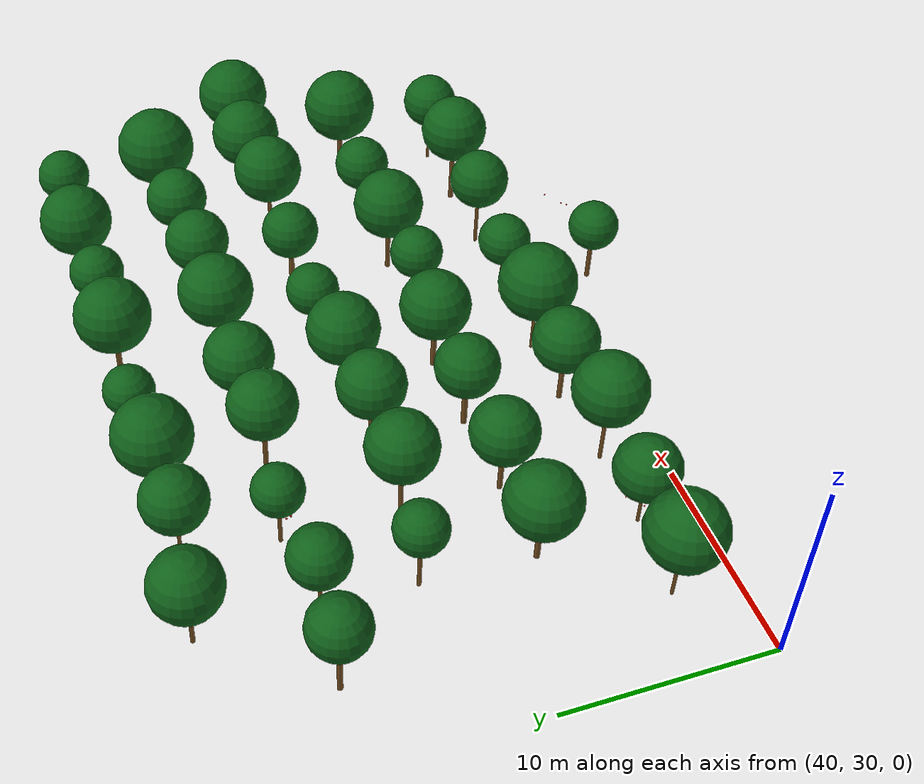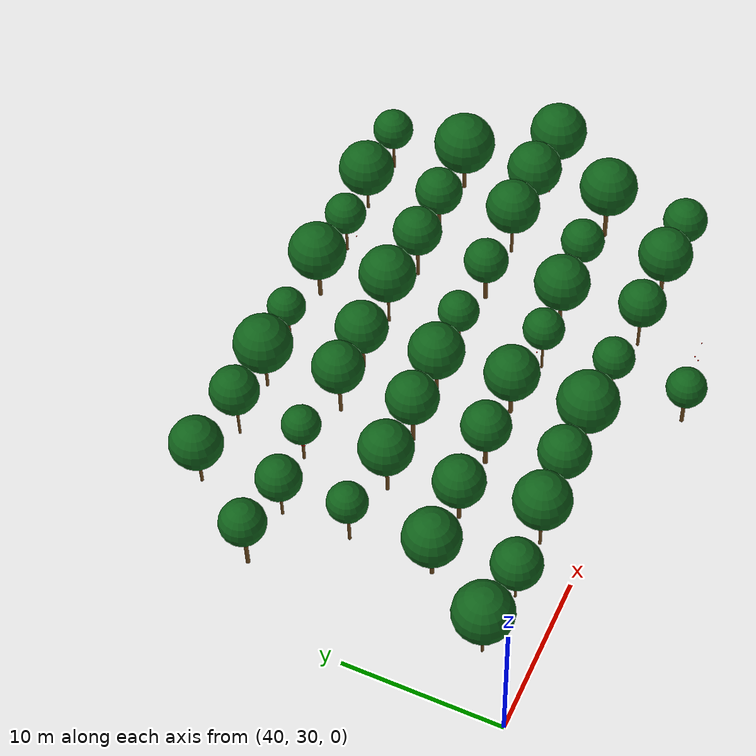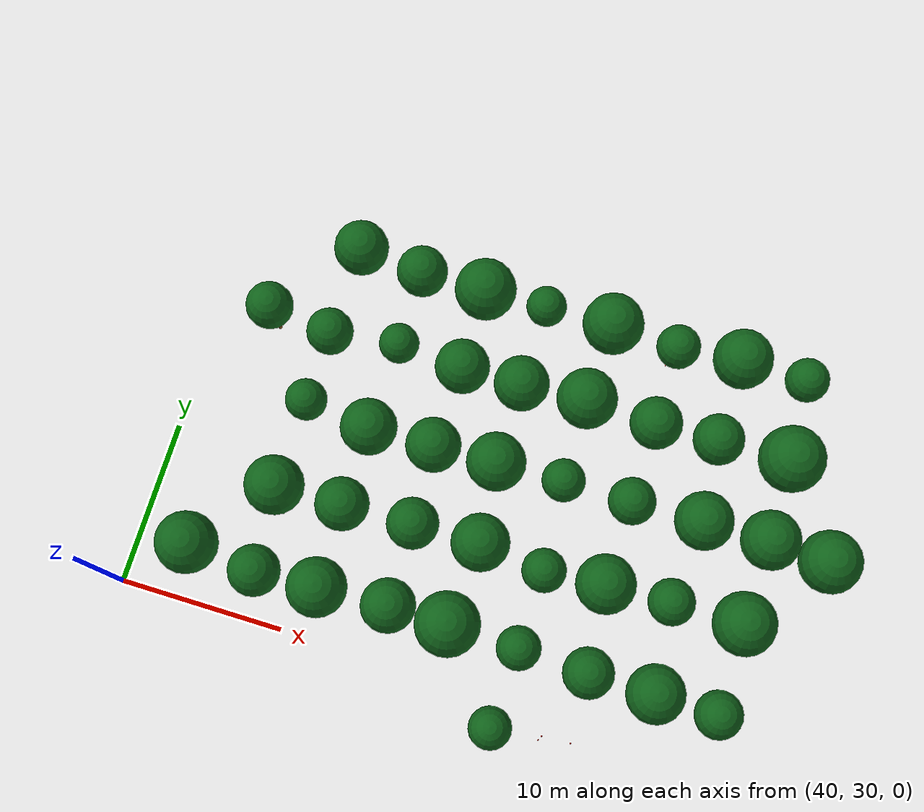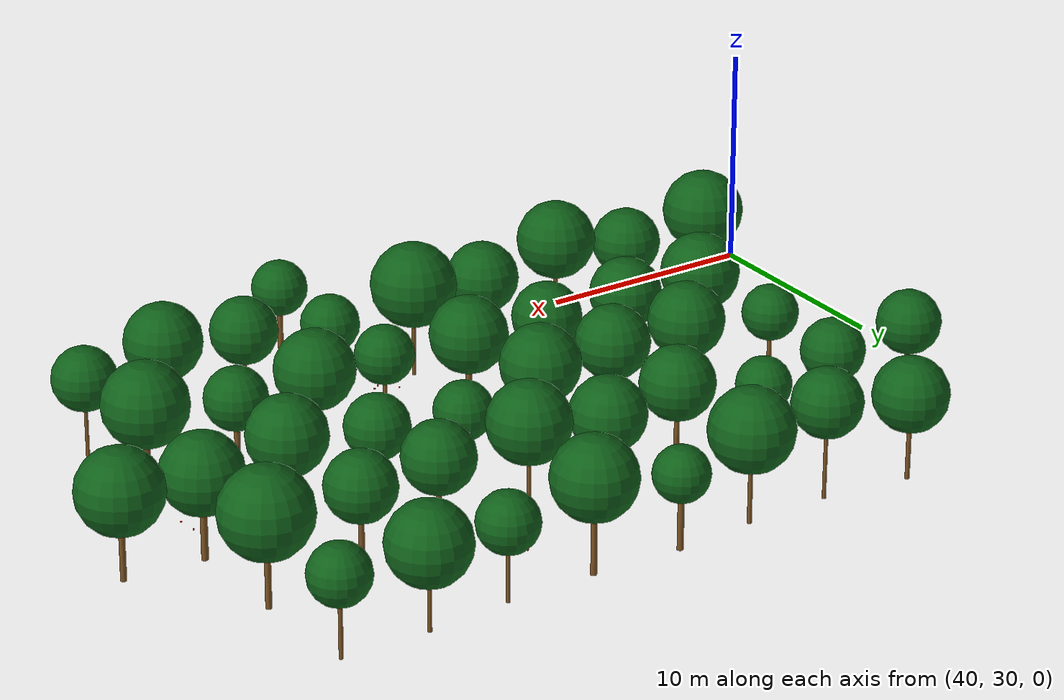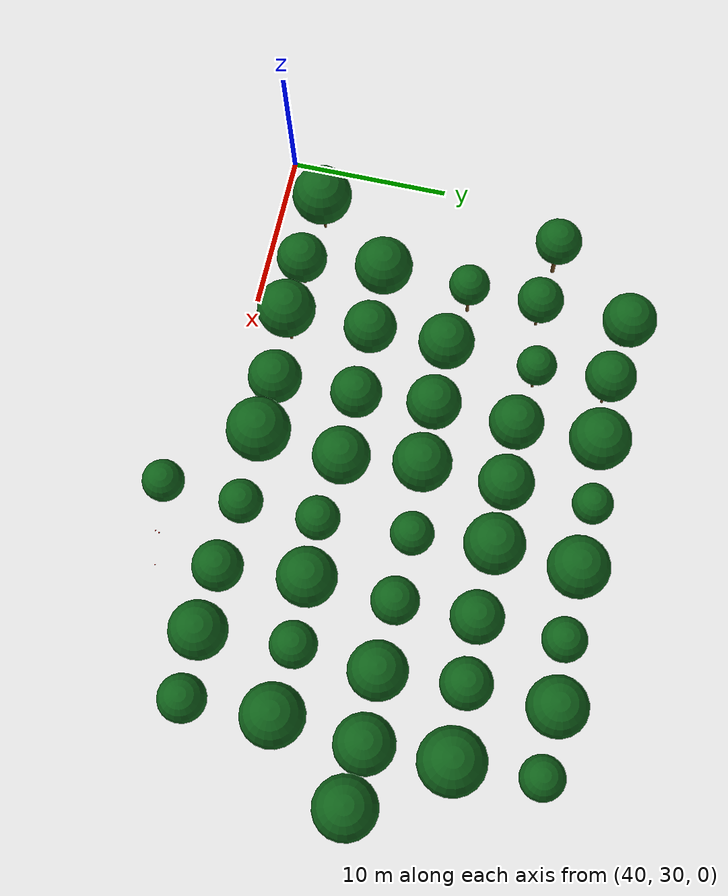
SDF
<sdf version="1.9">
 <world name="cheongsong_orchard">
  <model name="apple_tree_1509">
   <static>true</static>
   <pose>63.67 28.11 0 0 0 0</pose>
   <link name="link">
    <collision name="trunk_col">
     <pose>0 0 1.07 0 0 0</pose>
     <geometry><cylinder><radius>0.121</radius><length>2.14</length></cylinder></geometry>
    </collision>
    <visual name="trunk_vis">
     <pose>0 0 1.07 0 0 0</pose>
     <geometry><cylinder><radius>0.121</radius><length>2.14</length></cylinder></geometry>
     <material><ambient>0.35 0.22 0.08 1</ambient><diffuse>0.45 0.30 0.12 1</diffuse></material>
    </visual>
    <collision name="canopy_col">
     <pose>0 0 3.41 0 0 0</pose>
     <geometry><sphere><radius>1.26</radius></sphere></geometry>
    </collision>
    <visual name="canopy_vis">
     <pose>0 0 3.41 0 0 0</pose>
     <geometry><sphere><radius>1.26</radius></sphere></geometry>
     <material><ambient>0.04 0.28 0.06 1</ambient><diffuse>0.06 0.38 0.10 1</diffuse></material>
    </visual>
   </link>
  </model>
  <model name="apple_tree_1559">
   <static>true</static>
   <pose>43.96 33.00 0 0 0 0</pose>
   <link name="link">
    <collision name="trunk_col">
     <pose>0 0 1.24 0 0 0</pose>
     <geometry><cylinder><radius>0.083</radius><length>2.47</length></cylinder></geometry>
    </collision>
    <visual name="trunk_vis">
     <pose>0 0 1.24 0 0 0</pose>
     <geometry><cylinder><radius>0.083</radius><length>2.47</length></cylinder></geometry>
     <material><ambient>0.35 0.22 0.08 1</ambient><diffuse>0.45 0.30 0.12 1</diffuse></material>
    </visual>
    <collision name="canopy_col">
     <pose>0 0 4.31 0 0 0</pose>
     <geometry><sphere><radius>1.84</radius></sphere></geometry>
    </collision>
    <visual name="canopy_vis">
     <pose>0 0 4.31 0 0 0</pose>
     <geometry><sphere><radius>1.84</radius></sphere></geometry>
     <material><ambient>0.04 0.28 0.06 1</ambient><diffuse>0.06 0.38 0.10 1</diffuse></material>
    </visual>
   </link>
  </model>
  <model name="apple_tree_1560">
   <static>true</static>
   <pose>48.03 32.66 0 0 0 0</pose>
   <link name="link">
    <collision name="trunk_col">
     <pose>0 0 1.00 0 0 0</pose>
     <geometry><cylinder><radius>0.084</radius><length>2.01</length></cylinder></geometry>
    </collision>
    <visual name="trunk_vis">
     <pose>0 0 1.00 0 0 0</pose>
     <geometry><cylinder><radius>0.084</radius><length>2.01</length></cylinder></geometry>
     <material><ambient>0.35 0.22 0.08 1</ambient><diffuse>0.45 0.30 0.12 1</diffuse></material>
    </visual>
    <collision name="canopy_col">
     <pose>0 0 3.56 0 0 0</pose>
     <geometry><sphere><radius>1.55</radius></sphere></geometry>
    </collision>
    <visual name="canopy_vis">
     <pose>0 0 3.56 0 0 0</pose>
     <geometry><sphere><radius>1.55</radius></sphere></geometry>
     <material><ambient>0.04 0.28 0.06 1</ambient><diffuse>0.06 0.38 0.10 1</diffuse></material>
    </visual>
   </link>
  </model>
  <model name="apple_tree_1561">
   <static>true</static>
   <pose>51.95 32.72 0 0 0 0</pose>
   <link name="link">
    <collision name="trunk_col">
     <pose>0 0 1.42 0 0 0</pose>
     <geometry><cylinder><radius>0.095</radius><length>2.84</length></cylinder></geometry>
    </collision>
    <visual name="trunk_vis">
     <pose>0 0 1.42 0 0 0</pose>
     <geometry><cylinder><radius>0.095</radius><length>2.84</length></cylinder></geometry>
     <material><ambient>0.35 0.22 0.08 1</ambient><diffuse>0.45 0.30 0.12 1</diffuse></material>
    </visual>
    <collision name="canopy_col">
     <pose>0 0 4.61 0 0 0</pose>
     <geometry><sphere><radius>1.77</radius></sphere></geometry>
    </collision>
    <visual name="canopy_vis">
     <pose>0 0 4.61 0 0 0</pose>
     <geometry><sphere><radius>1.77</radius></sphere></geometry>
     <material><ambient>0.04 0.28 0.06 1</ambient><diffuse>0.06 0.38 0.10 1</diffuse></material>
    </visual>
   </link>
  </model>
  <model name="apple_tree_1562">
   <static>true</static>
   <pose>56.08 32.98 0 0 0 0</pose>
   <link name="link">
    <collision name="trunk_col">
     <pose>0 0 1.12 0 0 0</pose>
     <geometry><cylinder><radius>0.126</radius><length>2.24</length></cylinder></geometry>
    </collision>
    <visual name="trunk_vis">
     <pose>0 0 1.12 0 0 0</pose>
     <geometry><cylinder><radius>0.126</radius><length>2.24</length></cylinder></geometry>
     <material><ambient>0.35 0.22 0.08 1</ambient><diffuse>0.45 0.30 0.12 1</diffuse></material>
    </visual>
    <collision name="canopy_col">
     <pose>0 0 3.86 0 0 0</pose>
     <geometry><sphere><radius>1.62</radius></sphere></geometry>
    </collision>
    <visual name="canopy_vis">
     <pose>0 0 3.86 0 0 0</pose>
     <geometry><sphere><radius>1.62</radius></sphere></geometry>
     <material><ambient>0.04 0.28 0.06 1</ambient><diffuse>0.06 0.38 0.10 1</diffuse></material>
    </visual>
   </link>
  </model>
  <model name="apple_tree_1563">
   <static>true</static>
   <pose>59.67 32.93 0 0 0 0</pose>
   <link name="link">
    <collision name="trunk_col">
     <pose>0 0 1.22 0 0 0</pose>
     <geometry><cylinder><radius>0.084</radius><length>2.44</length></cylinder></geometry>
    </collision>
    <visual name="trunk_vis">
     <pose>0 0 1.22 0 0 0</pose>
     <geometry><cylinder><radius>0.084</radius><length>2.44</length></cylinder></geometry>
     <material><ambient>0.35 0.22 0.08 1</ambient><diffuse>0.45 0.30 0.12 1</diffuse></material>
    </visual>
    <collision name="canopy_col">
     <pose>0 0 4.36 0 0 0</pose>
     <geometry><sphere><radius>1.92</radius></sphere></geometry>
    </collision>
    <visual name="canopy_vis">
     <pose>0 0 4.36 0 0 0</pose>
     <geometry><sphere><radius>1.92</radius></sphere></geometry>
     <material><ambient>0.04 0.28 0.06 1</ambient><diffuse>0.06 0.38 0.10 1</diffuse></material>
    </visual>
   </link>
  </model>
  <model name="apple_tree_1564">
   <static>true</static>
   <pose>63.93 32.88 0 0 0 0</pose>
   <link name="link">
    <collision name="trunk_col">
     <pose>0 0 1.11 0 0 0</pose>
     <geometry><cylinder><radius>0.094</radius><length>2.22</length></cylinder></geometry>
    </collision>
    <visual name="trunk_vis">
     <pose>0 0 1.11 0 0 0</pose>
     <geometry><cylinder><radius>0.094</radius><length>2.22</length></cylinder></geometry>
     <material><ambient>0.35 0.22 0.08 1</ambient><diffuse>0.45 0.30 0.12 1</diffuse></material>
    </visual>
    <collision name="canopy_col">
     <pose>0 0 3.53 0 0 0</pose>
     <geometry><sphere><radius>1.31</radius></sphere></geometry>
    </collision>
    <visual name="canopy_vis">
     <pose>0 0 3.53 0 0 0</pose>
     <geometry><sphere><radius>1.31</radius></sphere></geometry>
     <material><ambient>0.04 0.28 0.06 1</ambient><diffuse>0.06 0.38 0.10 1</diffuse></material>
    </visual>
   </link>
  </model>
  <model name="apple_tree_1565">
   <static>true</static>
   <pose>68.10 32.65 0 0 0 0</pose>
   <link name="link">
    <collision name="trunk_col">
     <pose>0 0 1.34 0 0 0</pose>
     <geometry><cylinder><radius>0.095</radius><length>2.67</length></cylinder></geometry>
    </collision>
    <visual name="trunk_vis">
     <pose>0 0 1.34 0 0 0</pose>
     <geometry><cylinder><radius>0.095</radius><length>2.67</length></cylinder></geometry>
     <material><ambient>0.35 0.22 0.08 1</ambient><diffuse>0.45 0.30 0.12 1</diffuse></material>
    </visual>
    <collision name="canopy_col">
     <pose>0 0 4.17 0 0 0</pose>
     <geometry><sphere><radius>1.50</radius></sphere></geometry>
    </collision>
    <visual name="canopy_vis">
     <pose>0 0 4.17 0 0 0</pose>
     <geometry><sphere><radius>1.50</radius></sphere></geometry>
     <material><ambient>0.04 0.28 0.06 1</ambient><diffuse>0.06 0.38 0.10 1</diffuse></material>
    </visual>
   </link>
  </model>
  <model name="apple_tree_1566">
   <static>true</static>
   <pose>72.00 32.60 0 0 0 0</pose>
   <link name="link">
    <collision name="trunk_col">
     <pose>0 0 1.45 0 0 0</pose>
     <geometry><cylinder><radius>0.129</radius><length>2.90</length></cylinder></geometry>
    </collision>
    <visual name="trunk_vis">
     <pose>0 0 1.45 0 0 0</pose>
     <geometry><cylinder><radius>0.129</radius><length>2.90</length></cylinder></geometry>
     <material><ambient>0.35 0.22 0.08 1</ambient><diffuse>0.45 0.30 0.12 1</diffuse></material>
    </visual>
    <collision name="canopy_col">
     <pose>0 0 4.62 0 0 0</pose>
     <geometry><sphere><radius>1.72</radius></sphere></geometry>
    </collision>
    <visual name="canopy_vis">
     <pose>0 0 4.62 0 0 0</pose>
     <geometry><sphere><radius>1.72</radius></sphere></geometry>
     <material><ambient>0.04 0.28 0.06 1</ambient><diffuse>0.06 0.38 0.10 1</diffuse></material>
    </visual>
   </link>
  </model>
  <model name="apple_tree_1567">
   <static>true</static>
   <pose>75.78 32.58 0 0 0 0</pose>
   <link name="link">
    <collision name="trunk_col">
     <pose>0 0 1.22 0 0 0</pose>
     <geometry><cylinder><radius>0.082</radius><length>2.44</length></cylinder></geometry>
    </collision>
    <visual name="trunk_vis">
     <pose>0 0 1.22 0 0 0</pose>
     <geometry><cylinder><radius>0.082</radius><length>2.44</length></cylinder></geometry>
     <material><ambient>0.35 0.22 0.08 1</ambient><diffuse>0.45 0.30 0.12 1</diffuse></material>
    </visual>
    <collision name="canopy_col">
     <pose>0 0 3.86 0 0 0</pose>
     <geometry><sphere><radius>1.42</radius></sphere></geometry>
    </collision>
    <visual name="canopy_vis">
     <pose>0 0 3.86 0 0 0</pose>
     <geometry><sphere><radius>1.42</radius></sphere></geometry>
     <material><ambient>0.04 0.28 0.06 1</ambient><diffuse>0.06 0.38 0.10 1</diffuse></material>
    </visual>
   </link>
  </model>
  <model name="apple_tree_1616">
   <static>true</static>
   <pose>47.58 37.72 0 0 0 0</pose>
   <link name="link">
    <collision name="trunk_col">
     <pose>0 0 1.01 0 0 0</pose>
     <geometry><cylinder><radius>0.136</radius><length>2.03</length></cylinder></geometry>
    </collision>
    <visual name="trunk_vis">
     <pose>0 0 1.01 0 0 0</pose>
     <geometry><cylinder><radius>0.136</radius><length>2.03</length></cylinder></geometry>
     <material><ambient>0.35 0.22 0.08 1</ambient><diffuse>0.45 0.30 0.12 1</diffuse></material>
    </visual>
    <collision name="canopy_col">
     <pose>0 0 3.81 0 0 0</pose>
     <geometry><sphere><radius>1.78</radius></sphere></geometry>
    </collision>
    <visual name="canopy_vis">
     <pose>0 0 3.81 0 0 0</pose>
     <geometry><sphere><radius>1.78</radius></sphere></geometry>
     <material><ambient>0.04 0.28 0.06 1</ambient><diffuse>0.06 0.38 0.10 1</diffuse></material>
    </visual>
   </link>
  </model>
  <model name="apple_tree_1617">
   <static>true</static>
   <pose>51.71 37.81 0 0 0 0</pose>
   <link name="link">
    <collision name="trunk_col">
     <pose>0 0 1.11 0 0 0</pose>
     <geometry><cylinder><radius>0.124</radius><length>2.22</length></cylinder></geometry>
    </collision>
    <visual name="trunk_vis">
     <pose>0 0 1.11 0 0 0</pose>
     <geometry><cylinder><radius>0.124</radius><length>2.22</length></cylinder></geometry>
     <material><ambient>0.35 0.22 0.08 1</ambient><diffuse>0.45 0.30 0.12 1</diffuse></material>
    </visual>
    <collision name="canopy_col">
     <pose>0 0 3.83 0 0 0</pose>
     <geometry><sphere><radius>1.61</radius></sphere></geometry>
    </collision>
    <visual name="canopy_vis">
     <pose>0 0 3.83 0 0 0</pose>
     <geometry><sphere><radius>1.61</radius></sphere></geometry>
     <material><ambient>0.04 0.28 0.06 1</ambient><diffuse>0.06 0.38 0.10 1</diffuse></material>
    </visual>
   </link>
  </model>
  <model name="apple_tree_1618">
   <static>true</static>
   <pose>55.98 37.93 0 0 0 0</pose>
   <link name="link">
    <collision name="trunk_col">
     <pose>0 0 1.13 0 0 0</pose>
     <geometry><cylinder><radius>0.145</radius><length>2.26</length></cylinder></geometry>
    </collision>
    <visual name="trunk_vis">
     <pose>0 0 1.13 0 0 0</pose>
     <geometry><cylinder><radius>0.145</radius><length>2.26</length></cylinder></geometry>
     <material><ambient>0.35 0.22 0.08 1</ambient><diffuse>0.45 0.30 0.12 1</diffuse></material>
    </visual>
    <collision name="canopy_col">
     <pose>0 0 3.80 0 0 0</pose>
     <geometry><sphere><radius>1.55</radius></sphere></geometry>
    </collision>
    <visual name="canopy_vis">
     <pose>0 0 3.80 0 0 0</pose>
     <geometry><sphere><radius>1.55</radius></sphere></geometry>
     <material><ambient>0.04 0.28 0.06 1</ambient><diffuse>0.06 0.38 0.10 1</diffuse></material>
    </visual>
   </link>
  </model>
  <model name="apple_tree_1619">
   <static>true</static>
   <pose>60.07 37.99 0 0 0 0</pose>
   <link name="link">
    <collision name="trunk_col">
     <pose>0 0 1.13 0 0 0</pose>
     <geometry><cylinder><radius>0.139</radius><length>2.26</length></cylinder></geometry>
    </collision>
    <visual name="trunk_vis">
     <pose>0 0 1.13 0 0 0</pose>
     <geometry><cylinder><radius>0.139</radius><length>2.26</length></cylinder></geometry>
     <material><ambient>0.35 0.22 0.08 1</ambient><diffuse>0.45 0.30 0.12 1</diffuse></material>
    </visual>
    <collision name="canopy_col">
     <pose>0 0 3.99 0 0 0</pose>
     <geometry><sphere><radius>1.73</radius></sphere></geometry>
    </collision>
    <visual name="canopy_vis">
     <pose>0 0 3.99 0 0 0</pose>
     <geometry><sphere><radius>1.73</radius></sphere></geometry>
     <material><ambient>0.04 0.28 0.06 1</ambient><diffuse>0.06 0.38 0.10 1</diffuse></material>
    </visual>
   </link>
  </model>
  <model name="apple_tree_1620">
   <static>true</static>
   <pose>64.04 37.53 0 0 0 0</pose>
   <link name="link">
    <collision name="trunk_col">
     <pose>0 0 1.28 0 0 0</pose>
     <geometry><cylinder><radius>0.081</radius><length>2.57</length></cylinder></geometry>
    </collision>
    <visual name="trunk_vis">
     <pose>0 0 1.28 0 0 0</pose>
     <geometry><cylinder><radius>0.081</radius><length>2.57</length></cylinder></geometry>
     <material><ambient>0.35 0.22 0.08 1</ambient><diffuse>0.45 0.30 0.12 1</diffuse></material>
    </visual>
    <collision name="canopy_col">
     <pose>0 0 3.88 0 0 0</pose>
     <geometry><sphere><radius>1.31</radius></sphere></geometry>
    </collision>
    <visual name="canopy_vis">
     <pose>0 0 3.88 0 0 0</pose>
     <geometry><sphere><radius>1.31</radius></sphere></geometry>
     <material><ambient>0.04 0.28 0.06 1</ambient><diffuse>0.06 0.38 0.10 1</diffuse></material>
    </visual>
   </link>
  </model>
  <model name="apple_tree_1621">
   <static>true</static>
   <pose>67.64 37.77 0 0 0 0</pose>
   <link name="link">
    <collision name="trunk_col">
     <pose>0 0 1.21 0 0 0</pose>
     <geometry><cylinder><radius>0.123</radius><length>2.43</length></cylinder></geometry>
    </collision>
    <visual name="trunk_vis">
     <pose>0 0 1.21 0 0 0</pose>
     <geometry><cylinder><radius>0.123</radius><length>2.43</length></cylinder></geometry>
     <material><ambient>0.35 0.22 0.08 1</ambient><diffuse>0.45 0.30 0.12 1</diffuse></material>
    </visual>
    <collision name="canopy_col">
     <pose>0 0 4.20 0 0 0</pose>
     <geometry><sphere><radius>1.77</radius></sphere></geometry>
    </collision>
    <visual name="canopy_vis">
     <pose>0 0 4.20 0 0 0</pose>
     <geometry><sphere><radius>1.77</radius></sphere></geometry>
     <material><ambient>0.04 0.28 0.06 1</ambient><diffuse>0.06 0.38 0.10 1</diffuse></material>
    </visual>
   </link>
  </model>
  <model name="apple_tree_1622">
   <static>true</static>
   <pose>71.53 37.92 0 0 0 0</pose>
   <link name="link">
    <collision name="trunk_col">
     <pose>0 0 1.27 0 0 0</pose>
     <geometry><cylinder><radius>0.124</radius><length>2.55</length></cylinder></geometry>
    </collision>
    <visual name="trunk_vis">
     <pose>0 0 1.27 0 0 0</pose>
     <geometry><cylinder><radius>0.124</radius><length>2.55</length></cylinder></geometry>
     <material><ambient>0.35 0.22 0.08 1</ambient><diffuse>0.45 0.30 0.12 1</diffuse></material>
    </visual>
    <collision name="canopy_col">
     <pose>0 0 3.94 0 0 0</pose>
     <geometry><sphere><radius>1.39</radius></sphere></geometry>
    </collision>
    <visual name="canopy_vis">
     <pose>0 0 3.94 0 0 0</pose>
     <geometry><sphere><radius>1.39</radius></sphere></geometry>
     <material><ambient>0.04 0.28 0.06 1</ambient><diffuse>0.06 0.38 0.10 1</diffuse></material>
    </visual>
   </link>
  </model>
  <model name="apple_tree_1623">
   <static>true</static>
   <pose>75.72 37.83 0 0 0 0</pose>
   <link name="link">
    <collision name="trunk_col">
     <pose>0 0 1.44 0 0 0</pose>
     <geometry><cylinder><radius>0.141</radius><length>2.88</length></cylinder></geometry>
    </collision>
    <visual name="trunk_vis">
     <pose>0 0 1.44 0 0 0</pose>
     <geometry><cylinder><radius>0.141</radius><length>2.88</length></cylinder></geometry>
     <material><ambient>0.35 0.22 0.08 1</ambient><diffuse>0.45 0.30 0.12 1</diffuse></material>
    </visual>
    <collision name="canopy_col">
     <pose>0 0 4.75 0 0 0</pose>
     <geometry><sphere><radius>1.87</radius></sphere></geometry>
    </collision>
    <visual name="canopy_vis">
     <pose>0 0 4.75 0 0 0</pose>
     <geometry><sphere><radius>1.87</radius></sphere></geometry>
     <material><ambient>0.04 0.28 0.06 1</ambient><diffuse>0.06 0.38 0.10 1</diffuse></material>
    </visual>
   </link>
  </model>
  <model name="apple_tree_1673">
   <static>true</static>
   <pose>47.75 43.11 0 0 0 0</pose>
   <link name="link">
    <collision name="trunk_col">
     <pose>0 0 1.32 0 0 0</pose>
     <geometry><cylinder><radius>0.099</radius><length>2.64</length></cylinder></geometry>
    </collision>
    <visual name="trunk_vis">
     <pose>0 0 1.32 0 0 0</pose>
     <geometry><cylinder><radius>0.099</radius><length>2.64</length></cylinder></geometry>
     <material><ambient>0.35 0.22 0.08 1</ambient><diffuse>0.45 0.30 0.12 1</diffuse></material>
    </visual>
    <collision name="canopy_col">
     <pose>0 0 3.88 0 0 0</pose>
     <geometry><sphere><radius>1.25</radius></sphere></geometry>
    </collision>
    <visual name="canopy_vis">
     <pose>0 0 3.88 0 0 0</pose>
     <geometry><sphere><radius>1.25</radius></sphere></geometry>
     <material><ambient>0.04 0.28 0.06 1</ambient><diffuse>0.06 0.38 0.10 1</diffuse></material>
    </visual>
   </link>
  </model>
  <model name="apple_tree_1674">
   <static>true</static>
   <pose>51.85 42.53 0 0 0 0</pose>
   <link name="link">
    <collision name="trunk_col">
     <pose>0 0 1.33 0 0 0</pose>
     <geometry><cylinder><radius>0.113</radius><length>2.65</length></cylinder></geometry>
    </collision>
    <visual name="trunk_vis">
     <pose>0 0 1.33 0 0 0</pose>
     <geometry><cylinder><radius>0.113</radius><length>2.65</length></cylinder></geometry>
     <material><ambient>0.35 0.22 0.08 1</ambient><diffuse>0.45 0.30 0.12 1</diffuse></material>
    </visual>
    <collision name="canopy_col">
     <pose>0 0 4.34 0 0 0</pose>
     <geometry><sphere><radius>1.69</radius></sphere></geometry>
    </collision>
    <visual name="canopy_vis">
     <pose>0 0 4.34 0 0 0</pose>
     <geometry><sphere><radius>1.69</radius></sphere></geometry>
     <material><ambient>0.04 0.28 0.06 1</ambient><diffuse>0.06 0.38 0.10 1</diffuse></material>
    </visual>
   </link>
  </model>
  <model name="apple_tree_1675">
   <static>true</static>
   <pose>55.78 42.61 0 0 0 0</pose>
   <link name="link">
    <collision name="trunk_col">
     <pose>0 0 1.34 0 0 0</pose>
     <geometry><cylinder><radius>0.125</radius><length>2.68</length></cylinder></geometry>
    </collision>
    <visual name="trunk_vis">
     <pose>0 0 1.34 0 0 0</pose>
     <geometry><cylinder><radius>0.125</radius><length>2.68</length></cylinder></geometry>
     <material><ambient>0.35 0.22 0.08 1</ambient><diffuse>0.45 0.30 0.12 1</diffuse></material>
    </visual>
    <collision name="canopy_col">
     <pose>0 0 4.32 0 0 0</pose>
     <geometry><sphere><radius>1.64</radius></sphere></geometry>
    </collision>
    <visual name="canopy_vis">
     <pose>0 0 4.32 0 0 0</pose>
     <geometry><sphere><radius>1.64</radius></sphere></geometry>
     <material><ambient>0.04 0.28 0.06 1</ambient><diffuse>0.06 0.38 0.10 1</diffuse></material>
    </visual>
   </link>
  </model>
  <model name="apple_tree_1676">
   <static>true</static>
   <pose>59.57 42.73 0 0 0 0</pose>
   <link name="link">
    <collision name="trunk_col">
     <pose>0 0 1.27 0 0 0</pose>
     <geometry><cylinder><radius>0.130</radius><length>2.55</length></cylinder></geometry>
    </collision>
    <visual name="trunk_vis">
     <pose>0 0 1.27 0 0 0</pose>
     <geometry><cylinder><radius>0.130</radius><length>2.55</length></cylinder></geometry>
     <material><ambient>0.35 0.22 0.08 1</ambient><diffuse>0.45 0.30 0.12 1</diffuse></material>
    </visual>
    <collision name="canopy_col">
     <pose>0 0 4.31 0 0 0</pose>
     <geometry><sphere><radius>1.76</radius></sphere></geometry>
    </collision>
    <visual name="canopy_vis">
     <pose>0 0 4.31 0 0 0</pose>
     <geometry><sphere><radius>1.76</radius></sphere></geometry>
     <material><ambient>0.04 0.28 0.06 1</ambient><diffuse>0.06 0.38 0.10 1</diffuse></material>
    </visual>
   </link>
  </model>
  <model name="apple_tree_1677">
   <static>true</static>
   <pose>63.62 43.02 0 0 0 0</pose>
   <link name="link">
    <collision name="trunk_col">
     <pose>0 0 1.02 0 0 0</pose>
     <geometry><cylinder><radius>0.138</radius><length>2.03</length></cylinder></geometry>
    </collision>
    <visual name="trunk_vis">
     <pose>0 0 1.02 0 0 0</pose>
     <geometry><cylinder><radius>0.138</radius><length>2.03</length></cylinder></geometry>
     <material><ambient>0.35 0.22 0.08 1</ambient><diffuse>0.45 0.30 0.12 1</diffuse></material>
    </visual>
    <collision name="canopy_col">
     <pose>0 0 3.33 0 0 0</pose>
     <geometry><sphere><radius>1.30</radius></sphere></geometry>
    </collision>
    <visual name="canopy_vis">
     <pose>0 0 3.33 0 0 0</pose>
     <geometry><sphere><radius>1.30</radius></sphere></geometry>
     <material><ambient>0.04 0.28 0.06 1</ambient><diffuse>0.06 0.38 0.10 1</diffuse></material>
    </visual>
   </link>
  </model>
  <model name="apple_tree_1678">
   <static>true</static>
   <pose>67.78 42.94 0 0 0 0</pose>
   <link name="link">
    <collision name="trunk_col">
     <pose>0 0 1.13 0 0 0</pose>
     <geometry><cylinder><radius>0.140</radius><length>2.26</length></cylinder></geometry>
    </collision>
    <visual name="trunk_vis">
     <pose>0 0 1.13 0 0 0</pose>
     <geometry><cylinder><radius>0.140</radius><length>2.26</length></cylinder></geometry>
     <material><ambient>0.35 0.22 0.08 1</ambient><diffuse>0.45 0.30 0.12 1</diffuse></material>
    </visual>
    <collision name="canopy_col">
     <pose>0 0 3.68 0 0 0</pose>
     <geometry><sphere><radius>1.42</radius></sphere></geometry>
    </collision>
    <visual name="canopy_vis">
     <pose>0 0 3.68 0 0 0</pose>
     <geometry><sphere><radius>1.42</radius></sphere></geometry>
     <material><ambient>0.04 0.28 0.06 1</ambient><diffuse>0.06 0.38 0.10 1</diffuse></material>
    </visual>
   </link>
  </model>
  <model name="apple_tree_1679">
   <static>true</static>
   <pose>72.02 42.90 0 0 0 0</pose>
   <link name="link">
    <collision name="trunk_col">
     <pose>0 0 1.33 0 0 0</pose>
     <geometry><cylinder><radius>0.103</radius><length>2.67</length></cylinder></geometry>
    </collision>
    <visual name="trunk_vis">
     <pose>0 0 1.33 0 0 0</pose>
     <geometry><cylinder><radius>0.103</radius><length>2.67</length></cylinder></geometry>
     <material><ambient>0.35 0.22 0.08 1</ambient><diffuse>0.45 0.30 0.12 1</diffuse></material>
    </visual>
    <collision name="canopy_col">
     <pose>0 0 4.41 0 0 0</pose>
     <geometry><sphere><radius>1.74</radius></sphere></geometry>
    </collision>
    <visual name="canopy_vis">
     <pose>0 0 4.41 0 0 0</pose>
     <geometry><sphere><radius>1.74</radius></sphere></geometry>
     <material><ambient>0.04 0.28 0.06 1</ambient><diffuse>0.06 0.38 0.10 1</diffuse></material>
    </visual>
   </link>
  </model>
  <model name="apple_tree_1680">
   <static>true</static>
   <pose>76.05 43.05 0 0 0 0</pose>
   <link name="link">
    <collision name="trunk_col">
     <pose>0 0 1.06 0 0 0</pose>
     <geometry><cylinder><radius>0.149</radius><length>2.11</length></cylinder></geometry>
    </collision>
    <visual name="trunk_vis">
     <pose>0 0 1.06 0 0 0</pose>
     <geometry><cylinder><radius>0.149</radius><length>2.11</length></cylinder></geometry>
     <material><ambient>0.35 0.22 0.08 1</ambient><diffuse>0.45 0.30 0.12 1</diffuse></material>
    </visual>
    <collision name="canopy_col">
     <pose>0 0 3.89 0 0 0</pose>
     <geometry><sphere><radius>1.78</radius></sphere></geometry>
    </collision>
    <visual name="canopy_vis">
     <pose>0 0 3.89 0 0 0</pose>
     <geometry><sphere><radius>1.78</radius></sphere></geometry>
     <material><ambient>0.04 0.28 0.06 1</ambient><diffuse>0.06 0.38 0.10 1</diffuse></material>
    </visual>
   </link>
  </model>
  <model name="apple_tree_1681">
   <static>true</static>
   <pose>79.63 42.81 0 0 0 0</pose>
   <link name="link">
    <collision name="trunk_col">
     <pose>0 0 1.06 0 0 0</pose>
     <geometry><cylinder><radius>0.132</radius><length>2.12</length></cylinder></geometry>
    </collision>
    <visual name="trunk_vis">
     <pose>0 0 1.06 0 0 0</pose>
     <geometry><cylinder><radius>0.132</radius><length>2.12</length></cylinder></geometry>
     <material><ambient>0.35 0.22 0.08 1</ambient><diffuse>0.45 0.30 0.12 1</diffuse></material>
    </visual>
    <collision name="canopy_col">
     <pose>0 0 3.99 0 0 0</pose>
     <geometry><sphere><radius>1.87</radius></sphere></geometry>
    </collision>
    <visual name="canopy_vis">
     <pose>0 0 3.99 0 0 0</pose>
     <geometry><sphere><radius>1.87</radius></sphere></geometry>
     <material><ambient>0.04 0.28 0.06 1</ambient><diffuse>0.06 0.38 0.10 1</diffuse></material>
    </visual>
   </link>
  </model>
  <model name="apple_tree_1728">
   <static>true</static>
   <pose>43.91 47.87 0 0 0 0</pose>
   <link name="link">
    <collision name="trunk_col">
     <pose>0 0 1.42 0 0 0</pose>
     <geometry><cylinder><radius>0.127</radius><length>2.84</length></cylinder></geometry>
    </collision>
    <visual name="trunk_vis">
     <pose>0 0 1.42 0 0 0</pose>
     <geometry><cylinder><radius>0.127</radius><length>2.84</length></cylinder></geometry>
     <material><ambient>0.35 0.22 0.08 1</ambient><diffuse>0.45 0.30 0.12 1</diffuse></material>
    </visual>
    <collision name="canopy_col">
     <pose>0 0 4.26 0 0 0</pose>
     <geometry><sphere><radius>1.42</radius></sphere></geometry>
    </collision>
    <visual name="canopy_vis">
     <pose>0 0 4.26 0 0 0</pose>
     <geometry><sphere><radius>1.42</radius></sphere></geometry>
     <material><ambient>0.04 0.28 0.06 1</ambient><diffuse>0.06 0.38 0.10 1</diffuse></material>
    </visual>
   </link>
  </model>
  <model name="apple_tree_1729">
   <static>true</static>
   <pose>47.75 47.52 0 0 0 0</pose>
   <link name="link">
    <collision name="trunk_col">
     <pose>0 0 1.18 0 0 0</pose>
     <geometry><cylinder><radius>0.089</radius><length>2.35</length></cylinder></geometry>
    </collision>
    <visual name="trunk_vis">
     <pose>0 0 1.18 0 0 0</pose>
     <geometry><cylinder><radius>0.089</radius><length>2.35</length></cylinder></geometry>
     <material><ambient>0.35 0.22 0.08 1</ambient><diffuse>0.45 0.30 0.12 1</diffuse></material>
    </visual>
    <collision name="canopy_col">
     <pose>0 0 3.77 0 0 0</pose>
     <geometry><sphere><radius>1.41</radius></sphere></geometry>
    </collision>
    <visual name="canopy_vis">
     <pose>0 0 3.77 0 0 0</pose>
     <geometry><sphere><radius>1.41</radius></sphere></geometry>
     <material><ambient>0.04 0.28 0.06 1</ambient><diffuse>0.06 0.38 0.10 1</diffuse></material>
    </visual>
   </link>
  </model>
  <model name="apple_tree_1730">
   <static>true</static>
   <pose>51.87 48.10 0 0 0 0</pose>
   <link name="link">
    <collision name="trunk_col">
     <pose>0 0 1.13 0 0 0</pose>
     <geometry><cylinder><radius>0.095</radius><length>2.26</length></cylinder></geometry>
    </collision>
    <visual name="trunk_vis">
     <pose>0 0 1.13 0 0 0</pose>
     <geometry><cylinder><radius>0.095</radius><length>2.26</length></cylinder></geometry>
     <material><ambient>0.35 0.22 0.08 1</ambient><diffuse>0.45 0.30 0.12 1</diffuse></material>
    </visual>
    <collision name="canopy_col">
     <pose>0 0 3.47 0 0 0</pose>
     <geometry><sphere><radius>1.21</radius></sphere></geometry>
    </collision>
    <visual name="canopy_vis">
     <pose>0 0 3.47 0 0 0</pose>
     <geometry><sphere><radius>1.21</radius></sphere></geometry>
     <material><ambient>0.04 0.28 0.06 1</ambient><diffuse>0.06 0.38 0.10 1</diffuse></material>
    </visual>
   </link>
  </model>
  <model name="apple_tree_1731">
   <static>true</static>
   <pose>56.00 47.60 0 0 0 0</pose>
   <link name="link">
    <collision name="trunk_col">
     <pose>0 0 1.39 0 0 0</pose>
     <geometry><cylinder><radius>0.115</radius><length>2.78</length></cylinder></geometry>
    </collision>
    <visual name="trunk_vis">
     <pose>0 0 1.39 0 0 0</pose>
     <geometry><cylinder><radius>0.115</radius><length>2.78</length></cylinder></geometry>
     <material><ambient>0.35 0.22 0.08 1</ambient><diffuse>0.45 0.30 0.12 1</diffuse></material>
    </visual>
    <collision name="canopy_col">
     <pose>0 0 4.41 0 0 0</pose>
     <geometry><sphere><radius>1.63</radius></sphere></geometry>
    </collision>
    <visual name="canopy_vis">
     <pose>0 0 4.41 0 0 0</pose>
     <geometry><sphere><radius>1.63</radius></sphere></geometry>
     <material><ambient>0.04 0.28 0.06 1</ambient><diffuse>0.06 0.38 0.10 1</diffuse></material>
    </visual>
   </link>
  </model>
  <model name="apple_tree_1732">
   <static>true</static>
   <pose>59.61 47.74 0 0 0 0</pose>
   <link name="link">
    <collision name="trunk_col">
     <pose>0 0 1.17 0 0 0</pose>
     <geometry><cylinder><radius>0.126</radius><length>2.34</length></cylinder></geometry>
    </collision>
    <visual name="trunk_vis">
     <pose>0 0 1.17 0 0 0</pose>
     <geometry><cylinder><radius>0.126</radius><length>2.34</length></cylinder></geometry>
     <material><ambient>0.35 0.22 0.08 1</ambient><diffuse>0.45 0.30 0.12 1</diffuse></material>
    </visual>
    <collision name="canopy_col">
     <pose>0 0 4.00 0 0 0</pose>
     <geometry><sphere><radius>1.66</radius></sphere></geometry>
    </collision>
    <visual name="canopy_vis">
     <pose>0 0 4.00 0 0 0</pose>
     <geometry><sphere><radius>1.66</radius></sphere></geometry>
     <material><ambient>0.04 0.28 0.06 1</ambient><diffuse>0.06 0.38 0.10 1</diffuse></material>
    </visual>
   </link>
  </model>
  <model name="apple_tree_1733">
   <static>true</static>
   <pose>63.56 47.80 0 0 0 0</pose>
   <link name="link">
    <collision name="trunk_col">
     <pose>0 0 1.46 0 0 0</pose>
     <geometry><cylinder><radius>0.086</radius><length>2.91</length></cylinder></geometry>
    </collision>
    <visual name="trunk_vis">
     <pose>0 0 1.46 0 0 0</pose>
     <geometry><cylinder><radius>0.086</radius><length>2.91</length></cylinder></geometry>
     <material><ambient>0.35 0.22 0.08 1</ambient><diffuse>0.45 0.30 0.12 1</diffuse></material>
    </visual>
    <collision name="canopy_col">
     <pose>0 0 4.71 0 0 0</pose>
     <geometry><sphere><radius>1.80</radius></sphere></geometry>
    </collision>
    <visual name="canopy_vis">
     <pose>0 0 4.71 0 0 0</pose>
     <geometry><sphere><radius>1.80</radius></sphere></geometry>
     <material><ambient>0.04 0.28 0.06 1</ambient><diffuse>0.06 0.38 0.10 1</diffuse></material>
    </visual>
   </link>
  </model>
  <model name="apple_tree_1734">
   <static>true</static>
   <pose>67.83 47.69 0 0 0 0</pose>
   <link name="link">
    <collision name="trunk_col">
     <pose>0 0 1.34 0 0 0</pose>
     <geometry><cylinder><radius>0.112</radius><length>2.68</length></cylinder></geometry>
    </collision>
    <visual name="trunk_vis">
     <pose>0 0 1.34 0 0 0</pose>
     <geometry><cylinder><radius>0.112</radius><length>2.68</length></cylinder></geometry>
     <material><ambient>0.35 0.22 0.08 1</ambient><diffuse>0.45 0.30 0.12 1</diffuse></material>
    </visual>
    <collision name="canopy_col">
     <pose>0 0 4.26 0 0 0</pose>
     <geometry><sphere><radius>1.57</radius></sphere></geometry>
    </collision>
    <visual name="canopy_vis">
     <pose>0 0 4.26 0 0 0</pose>
     <geometry><sphere><radius>1.57</radius></sphere></geometry>
     <material><ambient>0.04 0.28 0.06 1</ambient><diffuse>0.06 0.38 0.10 1</diffuse></material>
    </visual>
   </link>
  </model>
  <model name="apple_tree_1735">
   <static>true</static>
   <pose>71.60 47.86 0 0 0 0</pose>
   <link name="link">
    <collision name="trunk_col">
     <pose>0 0 1.28 0 0 0</pose>
     <geometry><cylinder><radius>0.120</radius><length>2.56</length></cylinder></geometry>
    </collision>
    <visual name="trunk_vis">
     <pose>0 0 1.28 0 0 0</pose>
     <geometry><cylinder><radius>0.120</radius><length>2.56</length></cylinder></geometry>
     <material><ambient>0.35 0.22 0.08 1</ambient><diffuse>0.45 0.30 0.12 1</diffuse></material>
    </visual>
    <collision name="canopy_col">
     <pose>0 0 4.09 0 0 0</pose>
     <geometry><sphere><radius>1.53</radius></sphere></geometry>
    </collision>
    <visual name="canopy_vis">
     <pose>0 0 4.09 0 0 0</pose>
     <geometry><sphere><radius>1.53</radius></sphere></geometry>
     <material><ambient>0.04 0.28 0.06 1</ambient><diffuse>0.06 0.38 0.10 1</diffuse></material>
    </visual>
   </link>
  </model>
  <model name="apple_tree_1736">
   <static>true</static>
   <pose>75.97 47.96 0 0 0 0</pose>
   <link name="link">
    <collision name="trunk_col">
     <pose>0 0 1.11 0 0 0</pose>
     <geometry><cylinder><radius>0.132</radius><length>2.23</length></cylinder></geometry>
    </collision>
    <visual name="trunk_vis">
     <pose>0 0 1.11 0 0 0</pose>
     <geometry><cylinder><radius>0.132</radius><length>2.23</length></cylinder></geometry>
     <material><ambient>0.35 0.22 0.08 1</ambient><diffuse>0.45 0.30 0.12 1</diffuse></material>
    </visual>
    <collision name="canopy_col">
     <pose>0 0 4.22 0 0 0</pose>
     <geometry><sphere><radius>1.99</radius></sphere></geometry>
    </collision>
    <visual name="canopy_vis">
     <pose>0 0 4.22 0 0 0</pose>
     <geometry><sphere><radius>1.99</radius></sphere></geometry>
     <material><ambient>0.04 0.28 0.06 1</ambient><diffuse>0.06 0.38 0.10 1</diffuse></material>
    </visual>
   </link>
  </model>
  <model name="apple_tree_1785">
   <static>true</static>
   <pose>47.95 53.01 0 0 0 0</pose>
   <link name="link">
    <collision name="trunk_col">
     <pose>0 0 1.13 0 0 0</pose>
     <geometry><cylinder><radius>0.102</radius><length>2.26</length></cylinder></geometry>
    </collision>
    <visual name="trunk_vis">
     <pose>0 0 1.13 0 0 0</pose>
     <geometry><cylinder><radius>0.102</radius><length>2.26</length></cylinder></geometry>
     <material><ambient>0.35 0.22 0.08 1</ambient><diffuse>0.45 0.30 0.12 1</diffuse></material>
    </visual>
    <collision name="canopy_col">
     <pose>0 0 3.91 0 0 0</pose>
     <geometry><sphere><radius>1.65</radius></sphere></geometry>
    </collision>
    <visual name="canopy_vis">
     <pose>0 0 3.91 0 0 0</pose>
     <geometry><sphere><radius>1.65</radius></sphere></geometry>
     <material><ambient>0.04 0.28 0.06 1</ambient><diffuse>0.06 0.38 0.10 1</diffuse></material>
    </visual>
   </link>
  </model>
  <model name="apple_tree_1786">
   <static>true</static>
   <pose>51.97 52.51 0 0 0 0</pose>
   <link name="link">
    <collision name="trunk_col">
     <pose>0 0 1.43 0 0 0</pose>
     <geometry><cylinder><radius>0.084</radius><length>2.87</length></cylinder></geometry>
    </collision>
    <visual name="trunk_vis">
     <pose>0 0 1.43 0 0 0</pose>
     <geometry><cylinder><radius>0.084</radius><length>2.87</length></cylinder></geometry>
     <material><ambient>0.35 0.22 0.08 1</ambient><diffuse>0.45 0.30 0.12 1</diffuse></material>
    </visual>
    <collision name="canopy_col">
     <pose>0 0 4.39 0 0 0</pose>
     <geometry><sphere><radius>1.53</radius></sphere></geometry>
    </collision>
    <visual name="canopy_vis">
     <pose>0 0 4.39 0 0 0</pose>
     <geometry><sphere><radius>1.53</radius></sphere></geometry>
     <material><ambient>0.04 0.28 0.06 1</ambient><diffuse>0.06 0.38 0.10 1</diffuse></material>
    </visual>
   </link>
  </model>
  <model name="apple_tree_1787">
   <static>true</static>
   <pose>55.90 52.59 0 0 0 0</pose>
   <link name="link">
    <collision name="trunk_col">
     <pose>0 0 1.20 0 0 0</pose>
     <geometry><cylinder><radius>0.099</radius><length>2.40</length></cylinder></geometry>
    </collision>
    <visual name="trunk_vis">
     <pose>0 0 1.20 0 0 0</pose>
     <geometry><cylinder><radius>0.099</radius><length>2.40</length></cylinder></geometry>
     <material><ambient>0.35 0.22 0.08 1</ambient><diffuse>0.45 0.30 0.12 1</diffuse></material>
    </visual>
    <collision name="canopy_col">
     <pose>0 0 4.25 0 0 0</pose>
     <geometry><sphere><radius>1.85</radius></sphere></geometry>
    </collision>
    <visual name="canopy_vis">
     <pose>0 0 4.25 0 0 0</pose>
     <geometry><sphere><radius>1.85</radius></sphere></geometry>
     <material><ambient>0.04 0.28 0.06 1</ambient><diffuse>0.06 0.38 0.10 1</diffuse></material>
    </visual>
   </link>
  </model>
  <model name="apple_tree_1788">
   <static>true</static>
   <pose>59.63 52.91 0 0 0 0</pose>
   <link name="link">
    <collision name="trunk_col">
     <pose>0 0 1.10 0 0 0</pose>
     <geometry><cylinder><radius>0.138</radius><length>2.20</length></cylinder></geometry>
    </collision>
    <visual name="trunk_vis">
     <pose>0 0 1.10 0 0 0</pose>
     <geometry><cylinder><radius>0.138</radius><length>2.20</length></cylinder></geometry>
     <material><ambient>0.35 0.22 0.08 1</ambient><diffuse>0.45 0.30 0.12 1</diffuse></material>
    </visual>
    <collision name="canopy_col">
     <pose>0 0 3.42 0 0 0</pose>
     <geometry><sphere><radius>1.22</radius></sphere></geometry>
    </collision>
    <visual name="canopy_vis">
     <pose>0 0 3.42 0 0 0</pose>
     <geometry><sphere><radius>1.22</radius></sphere></geometry>
     <material><ambient>0.04 0.28 0.06 1</ambient><diffuse>0.06 0.38 0.10 1</diffuse></material>
    </visual>
   </link>
  </model>
  <model name="apple_tree_1789">
   <static>true</static>
   <pose>63.77 52.74 0 0 0 0</pose>
   <link name="link">
    <collision name="trunk_col">
     <pose>0 0 1.25 0 0 0</pose>
     <geometry><cylinder><radius>0.132</radius><length>2.49</length></cylinder></geometry>
    </collision>
    <visual name="trunk_vis">
     <pose>0 0 1.25 0 0 0</pose>
     <geometry><cylinder><radius>0.132</radius><length>2.49</length></cylinder></geometry>
     <material><ambient>0.35 0.22 0.08 1</ambient><diffuse>0.45 0.30 0.12 1</diffuse></material>
    </visual>
    <collision name="canopy_col">
     <pose>0 0 4.33 0 0 0</pose>
     <geometry><sphere><radius>1.84</radius></sphere></geometry>
    </collision>
    <visual name="canopy_vis">
     <pose>0 0 4.33 0 0 0</pose>
     <geometry><sphere><radius>1.84</radius></sphere></geometry>
     <material><ambient>0.04 0.28 0.06 1</ambient><diffuse>0.06 0.38 0.10 1</diffuse></material>
    </visual>
   </link>
  </model>
  <model name="apple_tree_1790">
   <static>true</static>
   <pose>67.88 52.77 0 0 0 0</pose>
   <link name="link">
    <collision name="trunk_col">
     <pose>0 0 1.11 0 0 0</pose>
     <geometry><cylinder><radius>0.085</radius><length>2.22</length></cylinder></geometry>
    </collision>
    <visual name="trunk_vis">
     <pose>0 0 1.11 0 0 0</pose>
     <geometry><cylinder><radius>0.085</radius><length>2.22</length></cylinder></geometry>
     <material><ambient>0.35 0.22 0.08 1</ambient><diffuse>0.45 0.30 0.12 1</diffuse></material>
    </visual>
    <collision name="canopy_col">
     <pose>0 0 3.55 0 0 0</pose>
     <geometry><sphere><radius>1.33</radius></sphere></geometry>
    </collision>
    <visual name="canopy_vis">
     <pose>0 0 3.55 0 0 0</pose>
     <geometry><sphere><radius>1.33</radius></sphere></geometry>
     <material><ambient>0.04 0.28 0.06 1</ambient><diffuse>0.06 0.38 0.10 1</diffuse></material>
    </visual>
   </link>
  </model>
  <model name="apple_tree_1791">
   <static>true</static>
   <pose>71.73 53.06 0 0 0 0</pose>
   <link name="link">
    <collision name="trunk_col">
     <pose>0 0 1.03 0 0 0</pose>
     <geometry><cylinder><radius>0.089</radius><length>2.06</length></cylinder></geometry>
    </collision>
    <visual name="trunk_vis">
     <pose>0 0 1.03 0 0 0</pose>
     <geometry><cylinder><radius>0.089</radius><length>2.06</length></cylinder></geometry>
     <material><ambient>0.35 0.22 0.08 1</ambient><diffuse>0.45 0.30 0.12 1</diffuse></material>
    </visual>
    <collision name="canopy_col">
     <pose>0 0 3.86 0 0 0</pose>
     <geometry><sphere><radius>1.80</radius></sphere></geometry>
    </collision>
    <visual name="canopy_vis">
     <pose>0 0 3.86 0 0 0</pose>
     <geometry><sphere><radius>1.80</radius></sphere></geometry>
     <material><ambient>0.04 0.28 0.06 1</ambient><diffuse>0.06 0.38 0.10 1</diffuse></material>
    </visual>
   </link>
  </model>
  <model name="apple_tree_1792">
   <static>true</static>
   <pose>75.71 52.98 0 0 0 0</pose>
   <link name="link">
    <collision name="trunk_col">
     <pose>0 0 1.18 0 0 0</pose>
     <geometry><cylinder><radius>0.091</radius><length>2.35</length></cylinder></geometry>
    </collision>
    <visual name="trunk_vis">
     <pose>0 0 1.18 0 0 0</pose>
     <geometry><cylinder><radius>0.091</radius><length>2.35</length></cylinder></geometry>
     <material><ambient>0.35 0.22 0.08 1</ambient><diffuse>0.45 0.30 0.12 1</diffuse></material>
    </visual>
    <collision name="canopy_col">
     <pose>0 0 3.67 0 0 0</pose>
     <geometry><sphere><radius>1.32</radius></sphere></geometry>
    </collision>
    <visual name="canopy_vis">
     <pose>0 0 3.67 0 0 0</pose>
     <geometry><sphere><radius>1.32</radius></sphere></geometry>
     <material><ambient>0.04 0.28 0.06 1</ambient><diffuse>0.06 0.38 0.10 1</diffuse></material>
    </visual>
   </link>
  </model>
  <model name="apple_1510_0">
   <static>true</static>
   <pose>66.62 28.54 2.68 0 0 0</pose>
   <link name="link">
    <visual name="visual">
     <geometry><sphere><radius>0.04</radius></sphere></geometry>
     <material><ambient>0.7 0.05 0.02 1</ambient><diffuse>0.9 0.10 0.05 1</diffuse></material>
    </visual>
   </link>
  </model>
  <model name="apple_1510_2">
   <static>true</static>
   <pose>66.51 28.28 2.57 0 0 0</pose>
   <link name="link">
    <visual name="visual">
     <geometry><sphere><radius>0.04</radius></sphere></geometry>
     <material><ambient>0.7 0.05 0.02 1</ambient><diffuse>0.9 0.10 0.05 1</diffuse></material>
    </visual>
   </link>
  </model>
  <model name="apple_1510_3">
   <static>true</static>
   <pose>68.36 28.65 1.91 0 0 0</pose>
   <link name="link">
    <visual name="visual">
     <geometry><sphere><radius>0.04</radius></sphere></geometry>
     <material><ambient>0.7 0.05 0.02 1</ambient><diffuse>0.9 0.10 0.05 1</diffuse></material>
    </visual>
   </link>
  </model>
  <model name="apple_1560_0">
   <static>true</static>
   <pose>48.64 32.83 2.10 0 0 0</pose>
   <link name="link">
    <visual name="visual">
     <geometry><sphere><radius>0.04</radius></sphere></geometry>
     <material><ambient>0.7 0.05 0.02 1</ambient><diffuse>0.9 0.10 0.05 1</diffuse></material>
    </visual>
   </link>
  </model>
  <model name="apple_1560_1">
   <static>true</static>
   <pose>48.06 33.24 2.04 0 0 0</pose>
   <link name="link">
    <visual name="visual">
     <geometry><sphere><radius>0.04</radius></sphere></geometry>
     <material><ambient>0.7 0.05 0.02 1</ambient><diffuse>0.9 0.10 0.05 1</diffuse></material>
    </visual>
   </link>
  </model>
  <model name="apple_1560_2">
   <static>true</static>
   <pose>47.62 32.72 1.47 0 0 0</pose>
   <link name="link">
    <visual name="visual">
     <geometry><sphere><radius>0.04</radius></sphere></geometry>
     <material><ambient>0.7 0.05 0.02 1</ambient><diffuse>0.9 0.10 0.05 1</diffuse></material>
    </visual>
   </link>
  </model>
  <model name="apple_1560_3">
   <static>true</static>
   <pose>48.03 33.47 1.92 0 0 0</pose>
   <link name="link">
    <visual name="visual">
     <geometry><sphere><radius>0.04</radius></sphere></geometry>
     <material><ambient>0.7 0.05 0.02 1</ambient><diffuse>0.9 0.10 0.05 1</diffuse></material>
    </visual>
   </link>
  </model>
  <model name="apple_1620_0">
   <static>true</static>
   <pose>64.36 37.20 2.22 0 0 0</pose>
   <link name="link">
    <visual name="visual">
     <geometry><sphere><radius>0.04</radius></sphere></geometry>
     <material><ambient>0.7 0.05 0.02 1</ambient><diffuse>0.9 0.10 0.05 1</diffuse></material>
    </visual>
   </link>
  </model>
  <model name="apple_1620_1">
   <static>true</static>
   <pose>63.39 37.66 2.22 0 0 0</pose>
   <link name="link">
    <visual name="visual">
     <geometry><sphere><radius>0.04</radius></sphere></geometry>
     <material><ambient>0.7 0.05 0.02 1</ambient><diffuse>0.9 0.10 0.05 1</diffuse></material>
    </visual>
   </link>
  </model>
  <model name="apple_1620_2">
   <static>true</static>
   <pose>63.64 37.54 2.63 0 0 0</pose>
   <link name="link">
    <visual name="visual">
     <geometry><sphere><radius>0.04</radius></sphere></geometry>
     <material><ambient>0.7 0.05 0.02 1</ambient><diffuse>0.9 0.10 0.05 1</diffuse></material>
    </visual>
   </link>
  </model>
  <model name="apple_1620_3">
   <static>true</static>
   <pose>64.62 37.89 2.71 0 0 0</pose>
   <link name="link">
    <visual name="visual">
     <geometry><sphere><radius>0.04</radius></sphere></geometry>
     <material><ambient>0.7 0.05 0.02 1</ambient><diffuse>0.9 0.10 0.05 1</diffuse></material>
    </visual>
   </link>
  </model>
  <model name="apple_1680_0">
   <static>true</static>
   <pose>74.70 42.91 1.91 0 0 0</pose>
   <link name="link">
    <visual name="visual">
     <geometry><sphere><radius>0.04</radius></sphere></geometry>
     <material><ambient>0.7 0.05 0.02 1</ambient><diffuse>0.9 0.10 0.05 1</diffuse></material>
    </visual>
   </link>
  </model>
  <model name="apple_1680_1">
   <static>true</static>
   <pose>76.60 42.15 1.48 0 0 0</pose>
   <link name="link">
    <visual name="visual">
     <geometry><sphere><radius>0.04</radius></sphere></geometry>
     <material><ambient>0.7 0.05 0.02 1</ambient><diffuse>0.9 0.10 0.05 1</diffuse></material>
    </visual>
   </link>
  </model>
  <model name="apple_1680_2">
   <static>true</static>
   <pose>76.44 42.28 2.31 0 0 0</pose>
   <link name="link">
    <visual name="visual">
     <geometry><sphere><radius>0.04</radius></sphere></geometry>
     <material><ambient>0.7 0.05 0.02 1</ambient><diffuse>0.9 0.10 0.05 1</diffuse></material>
    </visual>
   </link>
  </model>
  <model name="apple_1680_3">
   <static>true</static>
   <pose>76.74 43.45 1.75 0 0 0</pose>
   <link name="link">
    <visual name="visual">
     <geometry><sphere><radius>0.04</radius></sphere></geometry>
     <material><ambient>0.7 0.05 0.02 1</ambient><diffuse>0.9 0.10 0.05 1</diffuse></material>
    </visual>
   </link>
  </model>
  <model name="apple_1730_0">
   <static>true</static>
   <pose>52.00 48.79 2.39 0 0 0</pose>
   <link name="link">
    <visual name="visual">
     <geometry><sphere><radius>0.04</radius></sphere></geometry>
     <material><ambient>0.7 0.05 0.02 1</ambient><diffuse>0.9 0.10 0.05 1</diffuse></material>
    </visual>
   </link>
  </model>
  <model name="apple_1730_1">
   <static>true</static>
   <pose>51.40 47.71 2.13 0 0 0</pose>
   <link name="link">
    <visual name="visual">
     <geometry><sphere><radius>0.04</radius></sphere></geometry>
     <material><ambient>0.7 0.05 0.02 1</ambient><diffuse>0.9 0.10 0.05 1</diffuse></material>
    </visual>
   </link>
  </model>
  <model name="apple_1730_2">
   <static>true</static>
   <pose>51.32 47.72 2.18 0 0 0</pose>
   <link name="link">
    <visual name="visual">
     <geometry><sphere><radius>0.04</radius></sphere></geometry>
     <material><ambient>0.7 0.05 0.02 1</ambient><diffuse>0.9 0.10 0.05 1</diffuse></material>
    </visual>
   </link>
  </model>
  <model name="apple_1730_3">
   <static>true</static>
   <pose>51.37 47.91 2.05 0 0 0</pose>
   <link name="link">
    <visual name="visual">
     <geometry><sphere><radius>0.04</radius></sphere></geometry>
     <material><ambient>0.7 0.05 0.02 1</ambient><diffuse>0.9 0.10 0.05 1</diffuse></material>
    </visual>
   </link>
  </model>
  <model name="apple_1790_0">
   <static>true</static>
   <pose>67.04 52.88 2.12 0 0 0</pose>
   <link name="link">
    <visual name="visual">
     <geometry><sphere><radius>0.04</radius></sphere></geometry>
     <material><ambient>0.7 0.05 0.02 1</ambient><diffuse>0.9 0.10 0.05 1</diffuse></material>
    </visual>
   </link>
  </model>
  <model name="apple_1790_1">
   <static>true</static>
   <pose>68.21 52.71 2.30 0 0 0</pose>
   <link name="link">
    <visual name="visual">
     <geometry><sphere><radius>0.04</radius></sphere></geometry>
     <material><ambient>0.7 0.05 0.02 1</ambient><diffuse>0.9 0.10 0.05 1</diffuse></material>
    </visual>
   </link>
  </model>
  <model name="apple_1790_2">
   <static>true</static>
   <pose>67.50 51.86 2.14 0 0 0</pose>
   <link name="link">
    <visual name="visual">
     <geometry><sphere><radius>0.04</radius></sphere></geometry>
     <material><ambient>0.7 0.05 0.02 1</ambient><diffuse>0.9 0.10 0.05 1</diffuse></material>
    </visual>
   </link>
  </model>
 </world>
</sdf>
